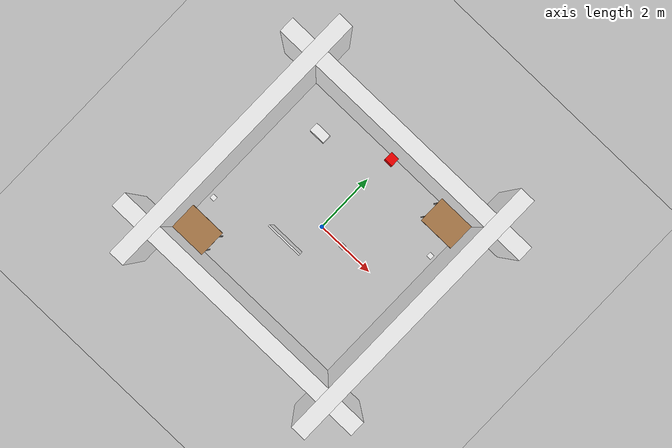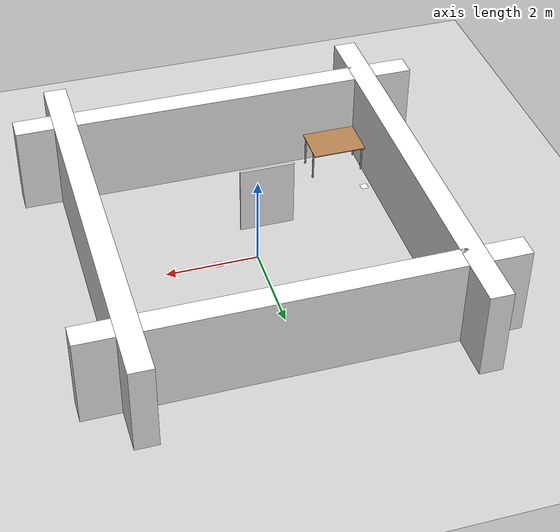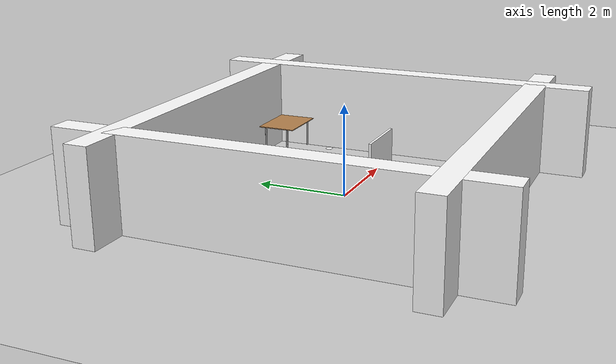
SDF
<?xml version="1.0" ?>
<sdf version="1.6">
  <world name="default">

    <!-- Lighting -->
    <include>
      <uri>https://fuel.gazebosim.org/1.0/openrobotics/models/sun</uri>
    </include>

    <!-- Ground -->
    <include>
      <uri>https://fuel.gazebosim.org/1.0/openrobotics/models/ground%20plane</uri>
    </include>

    <!-- Table -->
    <include>
      <uri>model://table_v2</uri>
      <pose>-2.57 -2.5975 0 0 0 0</pose>
      <name>table1</name>
    </include>

    <include>
      <uri>model://table_v2</uri>
      <pose>2.57 2.5975 0 0 0 0</pose>
      <name>table2</name>
    </include>

    <include>
      <uri>model://aruco_marker_21</uri>
      <name>aruco_marker_21</name>
      <pose>3.0 1.65 0.02 0 0 0</pose>
    </include>

    <include>
      <uri>model://aruco_marker_22</uri>
      <name>aruco_marker_22</name>
      <pose>-3.0 -1.65 0.02 0 0 3.14</pose>
    </include>

    <include>
      <uri>model://aruco_marker_20</uri>
      <name>aruco_marker_20</name>
      <pose>0.87 0.0 0.02 0 0 0</pose>
    </include>

    <model name="camera_box">
      <static>true</static>
      <pose>0.11 2.90 0.3 0 0 0</pose>
      <link name="link">
        <visual name="visual"> <!--fysisk størrelse-->
          <geometry>
            <box>
              <size>0.3 0.3 0.3</size>
            </box>
          </geometry>
          <material> <!--farve-->
            <ambient>1 0 0 1</ambient>
            <diffuse>1 0 0 1</diffuse>
          </material>
        </visual>
        <collision name="collision"> <!--collision-->
          <geometry>
            <box>
              <size>0.3 0.3 0.3</size>
            </box>
          </geometry>
        </collision>
      </link>
    </model>

    <model name="box">
      <static>true</static>
      <pose>-2.0 2.0 0.12 0 0 0</pose>
      <link name="link">
        <visual name="visual"> <!--fysisk størrelse-->
          <geometry>
            <box>
              <size>0.55 0.3 0.24</size>
            </box>
          </geometry>
          <material> <!--farve-->
            <ambient>1 1 1 1</ambient>
            <diffuse>1 1 1 1</diffuse>
          </material>
        </visual>
        <collision name="collision"> <!--collision-->
          <geometry>
            <box>
              <size>0.55 0.3 0.24</size>
            </box>
          </geometry>
        </collision>
      </link>
    </model>

    <model name="board">
      <static>true</static>
      <pose>-0.50 -1 0.7875 0 0 0</pose>
      <link name="link">
        <visual name="visual"> <!--fysisk størrelse-->
          <geometry>
            <box>
              <size>1.20 0.05 1.575</size>
            </box>
          </geometry>
          <material> <!--farve-->
            <ambient>1 1 1 1</ambient>
            <diffuse>1 1 1 1</diffuse>
          </material>
        </visual>
        <collision name="collision"> <!--collision-->
          <geometry>
            <box>
              <size>1.20 0.05 1.575</size>
            </box>
          </geometry>
        </collision>
      </link>
    </model>

    <model name="wall1">
      <static>true</static>
      <pose>3.42 0 1 0 0 1.57</pose>
      <link name="link">
        <visual name="visual"> <!--fysisk størrelse-->
          <geometry>
            <box>
              <size>9 0.5 2</size>
            </box>
          </geometry>
          <material> <!--farve-->
            <ambient>1 1 1 1</ambient>
            <diffuse>1 1 1 1</diffuse>
          </material>
        </visual>
        <collision name="collision"> <!--collision-->
          <geometry>
            <box>
              <size>9 0.5 2</size>
            </box>
          </geometry>
        </collision>
      </link>
    </model>

    <model name="wall2">
      <static>true</static>
      <pose>-3.42 0 1 0 0 1.57</pose>
      <link name="link">
        <visual name="visual"> <!--fysisk størrelse-->
          <geometry>
            <box>
              <size>9 0.5 2</size>
            </box>
          </geometry>
          <material> <!--farve-->
            <ambient>1 1 1 1</ambient>
            <diffuse>1 1 1 1</diffuse>
          </material>
        </visual>
        <collision name="collision"> <!--collision-->
          <geometry>
            <box>
              <size>9 0.5 2</size>
            </box>
          </geometry>
        </collision>
      </link>
    </model>

    <model name="wall3">
      <static>true</static>
      <pose>0 3.29 1 0 0 0</pose>
      <link name="link">
        <visual name="visual"> <!--fysisk størrelse-->
          <geometry>
            <box>
              <size>9 0.5 2</size>
            </box>
          </geometry>
          <material> <!--farve-->
            <ambient>1 1 1 1</ambient>
            <diffuse>1 1 1 1</diffuse>
          </material>
        </visual>
        <collision name="collision"> <!--collision-->
          <geometry>
            <box>
              <size>9 0.5 2</size>
            </box>
          </geometry>
        </collision>
      </link>
    </model>

    <model name="wall4">
      <static>true</static>
      <pose>0 -3.29 1 0 0 0</pose>
      <link name="link">
        <visual name="visual"> <!--fysisk størrelse-->
          <geometry>
            <box>
              <size>9 0.5 2</size>
            </box>
          </geometry>
          <material> <!--farve-->
            <ambient>1 1 1 1</ambient>
            <diffuse>1 1 1 1</diffuse>
          </material>
        </visual>
        <collision name="collision"> <!--collision-->
          <geometry>
            <box>
              <size>9 0.5 2</size>
            </box>
          </geometry>
        </collision>
      </link>
    </model>

    <plugin filename="gz-sim-physics-system" name="gz::sim::systems::Physics"/>
    <plugin filename="gz-sim-user-commands-system" name="gz::sim::systems::UserCommands"/>
    <plugin filename="gz-sim-scene-broadcaster-system" name="gz::sim::systems::SceneBroadcaster"/>
    <plugin filename="gz-sim-sensors-system" name="gz::sim::systems::Sensors"/>
  </world>
</sdf>

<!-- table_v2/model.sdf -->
<sdf version="1.5">
  <model name="Table">
    <static>true</static>
    <link name="link">
      <collision name="surface">
        <pose>0 0 0.69 0 0 0</pose>
        <geometry>
          <box>
            <size>1.20 0.885 0.02</size>
          </box>
        </geometry>
        <surface>
          <friction>
            <ode>
              <mu>0.6</mu>
              <mu2>0.6</mu2>
            </ode>
          </friction>
        </surface>
      </collision>
      <visual name="visual1">
        <pose>0 0 0.69 0 0 0</pose>
        <geometry>
          <box>
            <size>1.20 0.885 0.02</size>
          </box>
        </geometry>
        <material>
          <ambient>1.0 1.0 1.0 1</ambient>
          <diffuse>1.0 1.0 1.0 1</diffuse>
          <script>
            <uri>file://media/materials/scripts/gazebo.material</uri>
            <name>Gazebo/Wood</name>
          </script>
          <!-- PBR for Ignition, material scripts for gazebo classic-->
          <pbr>
            <metal>
              <albedo_map>model://table_v2/Table_Diffuse.jpg</albedo_map>
            </metal>
          </pbr>
        </material>
      </visual>
      <collision name="front_left_leg">
        <pose>0.58 0.28 0.345 0 0 0</pose>
        <geometry>
          <cylinder>
            <radius>0.02</radius>
            <length>0.69</length>
          </cylinder>
        </geometry>
      </collision>
      <visual name="front_left_leg">
        <pose>0.58 0.28 0.345 0 0 0</pose>
        <geometry>
          <cylinder>
            <radius>0.02</radius>
            <length>0.69</length>
          </cylinder>
        </geometry>
        <material>
          <diffuse>0.5 0.5 0.5</diffuse>
          <script>
            <uri>file://media/materials/scripts/gazebo.material</uri>
            <name>Gazebo/Grey</name>
          </script>
        </material>
      </visual>
      <collision name="front_right_leg">
        <pose>0.58 -0.28 0.345 0 0 0</pose>
        <geometry>
          <cylinder>
            <radius>0.02</radius>
            <length>0.69</length>
          </cylinder>
        </geometry>
      </collision>
      <visual name="front_right_leg">
        <pose>0.58 -0.28 0.345 0 0 0</pose>
        <geometry>
          <cylinder>
            <radius>0.02</radius>
            <length>0.69</length>
          </cylinder>
        </geometry>
        <material>
          <diffuse>0.5 0.5 0.5</diffuse>
          <script>
            <uri>file://media/materials/scripts/gazebo.material</uri>
            <name>Gazebo/Grey</name>
          </script>
        </material>
      </visual>
      <collision name="back_right_leg">
        <pose>-0.58 -0.28 0.345 0 0 0</pose>
        <geometry>
          <cylinder>
            <radius>0.02</radius>
            <length>0.69</length>
          </cylinder>
        </geometry>
      </collision>
      <visual name="back_right_leg">
        <pose>-0.58 -0.28 0.345 0 0 0</pose>
        <geometry>
          <cylinder>
            <radius>0.02</radius>
            <length>0.69</length>
          </cylinder>
        </geometry>
        <material>
          <diffuse>0.5 0.5 0.5</diffuse>
          <script>
            <uri>file://media/materials/scripts/gazebo.material</uri>
            <name>Gazebo/Grey</name>
          </script>
        </material>
      </visual>
      <collision name="back_left_leg">
        <pose>-0.58 0.28 0.345 0 0 0</pose>
        <geometry>
          <cylinder>
            <radius>0.02</radius>
            <length>0.69</length>
          </cylinder>
        </geometry>
      </collision>
      <visual name="back_left_leg">
        <pose>-0.58 0.28 0.345 0 0 0</pose>
        <geometry>
          <cylinder>
            <radius>0.02</radius>
            <length>0.69</length>
          </cylinder>
        </geometry>
        <material>
          <diffuse>0.5 0.5 0.5</diffuse>
          <script>
            <uri>file://media/materials/scripts/gazebo.material</uri>
            <name>Gazebo/Grey</name>
          </script>
        </material>
      </visual>
    </link>
  </model>
</sdf>

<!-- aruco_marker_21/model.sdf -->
<sdf version="1.6">
  <model name="aruco_marker_21">
    <static>true</static>

    <link name="marker_21_link">

      <visual name="marker_21_visual">
        <pose>0 0 0 0 0 0</pose>

        <geometry>
          <plane>
            <normal>0 0 1</normal>
            <size>0.162 0.162</size>
          </plane>
        </geometry>

        <material>
          <ambient>1 1 1 1</ambient>
          <diffuse>1 1 1 1</diffuse>
          <specular>0 0 0 1</specular>

          <pbr>
            <metal>
              <albedo_map>model://aruco_marker_21/textures/aruco_marker_21.png</albedo_map>
              <roughness>1.0</roughness>
              <metalness>0.0</metalness>
            </metal>
          </pbr>
        </material>

        <cast_shadows>false</cast_shadows>
      </visual>
    </link>
  </model>
</sdf>

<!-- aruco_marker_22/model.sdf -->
<sdf version="1.6">
  <model name="aruco_marker_22">
    <static>true</static>

    <link name="marker_22_link">

      <visual name="marker_22_visual">
        <pose>0 0 0 0 0 0</pose>

        <geometry>
          <plane>
            <normal>0 0 1</normal>
            <size>0.162 0.162</size>
          </plane>
        </geometry>

        <material>
          <ambient>1 1 1 1</ambient>
          <diffuse>1 1 1 1</diffuse>
          <specular>0 0 0 1</specular>

          <pbr>
            <metal>
              <albedo_map>model://aruco_marker_22/textures/aruco_marker_22.png</albedo_map>
              <roughness>1.0</roughness>
              <metalness>0.0</metalness>
            </metal>
          </pbr>
        </material>

        <cast_shadows>false</cast_shadows>
      </visual>
    </link>
  </model>
</sdf>

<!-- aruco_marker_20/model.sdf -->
<sdf version="1.6">
  <model name="aruco_marker_20">
    <static>true</static>

    <link name="marker_20_link">

      <visual name="marker_20_visual">
        <pose>0 0 0 0 0 0</pose>

        <geometry>
          <plane>
            <normal>0 0 1</normal>
            <size>0.162 0.162</size>
          </plane>
        </geometry>

        <material>
          <ambient>1 1 1 1</ambient>
          <diffuse>1 1 1 1</diffuse>
          <specular>0 0 0 1</specular>

          <pbr>
            <metal>
              <albedo_map>model://aruco_marker_20/textures/aruco_marker_20.png</albedo_map>
              <roughness>1.0</roughness>
              <metalness>0.0</metalness>
            </metal>
          </pbr>
        </material>

        <cast_shadows>false</cast_shadows>
      </visual>
    </link>
  </model>
</sdf>
